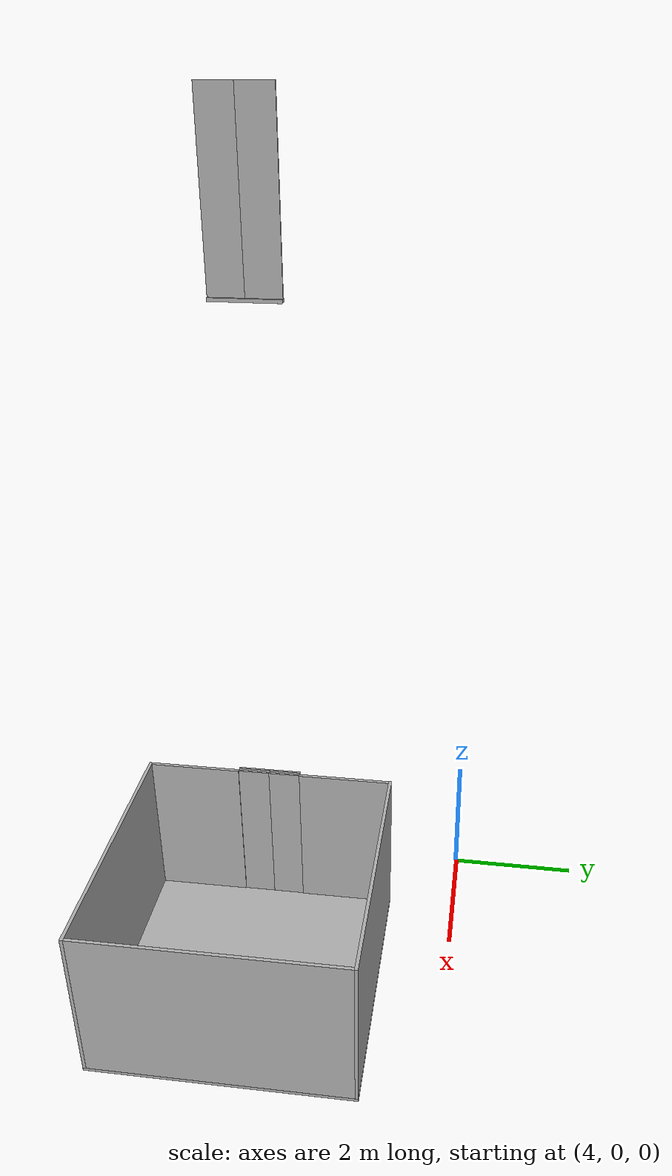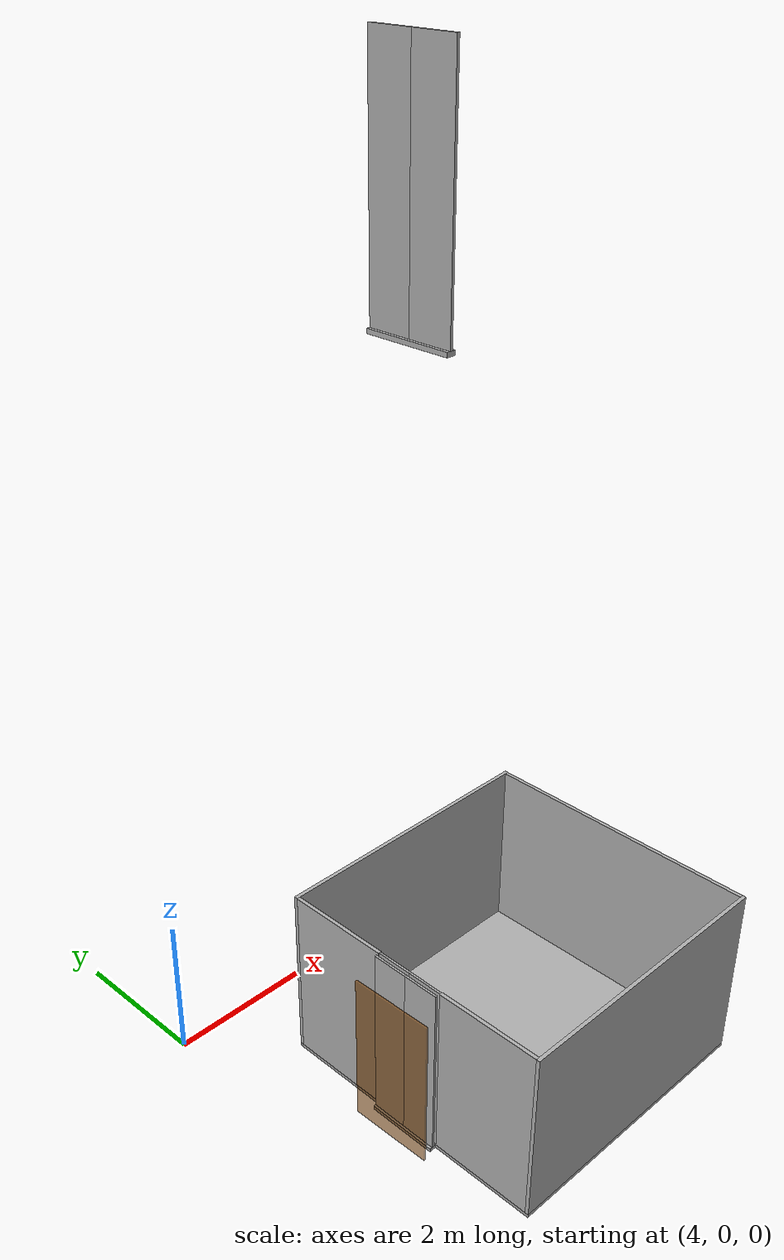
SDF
<sdf version="1.7">
 <world name="sim_world">
  <physics name="10ms" type="ode">
   <max_step_size>0.01</max_step_size>
   <real_time_factor>1.0</real_time_factor>
  </physics>
  <plugin filename="gz-sim-physics-system" name="gz::sim::systems::Physics"/>
  <plugin filename="gz-sim-user-commands-system" name="gz::sim::systems::UserCommands"/>
  <plugin filename="gz-sim-scene-broadcaster-system" name="gz::sim::systems::SceneBroadcaster"/>
  <plugin filename="libdoor.so" name="door"/>
  <plugin filename="liblift.so" name="lift"/>
  <scene><ambient>1 1 1</ambient><background>0.8 0.8 0.8</background><grid>false</grid></scene>
  <light type="directional" name="sun">
   <pose>0 0 10 0 0 0</pose>
   <diffuse>1 1 1 1</diffuse>
   <specular>0.2 0.2 0.2 1</specular>
   <attenuation>
    <range>1000</range>
    <constant>0.09</constant>
    <linear>0.001</linear>
    <quadratic>0.001</quadratic>
   </attenuation>
   <direction>-0.5 0.1 -0.9</direction>
  </light>
  <model name="null">
   <pose>4.847733333333333 -3.0652 0.0 0 0 1.5896922564070775</pose>
   <link name="right">
    <pose>0 0 1.11 0 0 0</pose>
    <visual name="right_visual">
     <geometry><box><size>1.154341194743954 0.03 2.2</size></box></geometry>
     <material>
      <ambient>0.5 0.25 0 0.6</ambient>
      <diffuse>0.5 0.25 0 0.6</diffuse>
      <pbr><metal><metalness>0.0</metalness></metal></pbr>
     </material>
    </visual>
    <collision name="right_collision">
     <geometry><box><size>1.154341194743954 0.03 2.2</size></box></geometry>
     <surface><contact><collide_bitmask>0x02</collide_bitmask></contact></surface>
    </collision>
    <inertial>
     <mass>50.0</mass>
     <inertia><ixx>20.17041666666667</ixx><iyy>25.71876497451208</iyy><izz>5.5558483078454115</izz></inertia>
    </inertial>
   </link>
   <joint name="right_joint" type="revolute">
    <parent>world</parent>
    <child>right</child>
    <axis><xyz>0 0 -1</xyz><limit><lower>0</lower><upper>1.57</upper></limit></axis>
    <pose>0.582170597371977 0 0 0 0 0</pose>
   </joint>
   <plugin name="register_component" filename="libregister_component.so">
    <component name="Door">
     <v_max_door>0.5</v_max_door>
     <a_max_door>0.3</a_max_door>
     <a_nom_door>0.15</a_nom_door>
     <dx_min_door>0.01</dx_min_door>
     <f_max_door>500.0</f_max_door>
     <ros_interface>true</ros_interface>
     <door name="null" type="SwingDoor" left_joint_name="empty_joint" right_joint_name="right_joint"/>
    </component>
   </plugin>
  </model>
  <model name="ShaftDoor_lift1_L1_name">
   <pose>5.083333333333333 -3.0666666666666664 0.0 0 0 1.57</pose>
   <link name="right_door">
    <pose>0.25 0 1.25 0 0 0</pose>
    <visual name="right_door_visual">
     <geometry><box><size>0.5 0.03 2.5</size></box></geometry>
     <material>
      <ambient>0.5 0.5 0.5 1</ambient>
      <diffuse>0.7 0.7 0.7 1</diffuse>
      <specular>0.6 0.6 0.6 1</specular>
      <emissive>0.1 0.1 0.1 1</emissive>
     </material>
    </visual>
    <collision name="right_door_collision">
     <geometry><box><size>0.5 0.03 2.5</size></box></geometry>
     <surface><contact><collide_bitmask>0x02</collide_bitmask></contact></surface>
    </collision>
   </link>
   <link name="left_door">
    <pose>-0.25 0 1.25 0 0 0</pose>
    <visual name="left_door_visual">
     <geometry><box><size>0.5 0.03 2.5</size></box></geometry>
     <material>
      <ambient>0.5 0.5 0.5 1</ambient>
      <diffuse>0.7 0.7 0.7 1</diffuse>
      <specular>0.6 0.6 0.6 1</specular>
      <emissive>0.1 0.1 0.1 1</emissive>
     </material>
    </visual>
    <collision name="left_door_collision">
     <geometry><box><size>0.5 0.03 2.5</size></box></geometry>
     <surface><contact><collide_bitmask>0x02</collide_bitmask></contact></surface>
    </collision>
   </link>
   <joint name="right_joint" type="prismatic">
    <parent>world</parent>
    <child>right_door</child>
    <axis><xyz>1 0 0</xyz><limit><lower>0</lower><upper>0.5</upper></limit></axis>
   </joint>
   <joint name="left_joint" type="prismatic">
    <parent>world</parent>
    <child>left_door</child>
    <axis><xyz>1 0 0</xyz><limit><lower>-0.5</lower><upper>0</upper></limit></axis>
   </joint>
   <link name="ramp">
    <pose>0 0 -0.025 0 0 0</pose>
    <visual name="ramp_visual">
     <geometry><box><size>1.0 0.1 0.05</size></box></geometry>
     <material>
      <ambient>0.5 0.5 0.5 1</ambient>
      <diffuse>0.7 0.7 0.7 1</diffuse>
      <specular>0.6 0.6 0.6 1</specular>
      <emissive>0.1 0.1 0.1 1</emissive>
     </material>
    </visual>
    <collision name="ramp_collision">
     <geometry><box><size>1.0 0.1 0.05</size></box></geometry>
     <surface><contact><collide_bitmask>0x02</collide_bitmask></contact></surface>
    </collision>
   </link>
   <joint name="ramp_joint" type="fixed"><parent>world</parent><child>ramp</child></joint>
   <plugin name="register_component" filename="libregister_component.so">
    <component name="Door">
     <v_max_door>0.3</v_max_door>
     <a_max_door>0.2</a_max_door>
     <a_nom_door>0.1</a_nom_door>
     <dx_min_door>0.0001</dx_min_door>
     <f_max_door>35.0</f_max_door>
     <door left_joint_name="left_joint" name="ShaftDoor_lift1_L1_name" right_joint_name="right_joint" type="DoubleSlidingDoor"/>
    </component>
   </plugin>
  </model>
  <model name="ShaftDoor_lift1_L2_name">
   <pose>5.083333333333333 -3.0666666666666664 10.0 0 0 1.57</pose>
   <link name="right_door">
    <pose>0.25 0 1.25 0 0 0</pose>
    <visual name="right_door_visual">
     <geometry><box><size>0.5 0.03 2.5</size></box></geometry>
     <material>
      <ambient>0.5 0.5 0.5 1</ambient>
      <diffuse>0.7 0.7 0.7 1</diffuse>
      <specular>0.6 0.6 0.6 1</specular>
      <emissive>0.1 0.1 0.1 1</emissive>
     </material>
    </visual>
    <collision name="right_door_collision">
     <geometry><box><size>0.5 0.03 2.5</size></box></geometry>
     <surface><contact><collide_bitmask>0x02</collide_bitmask></contact></surface>
    </collision>
   </link>
   <link name="left_door">
    <pose>-0.25 0 1.25 0 0 0</pose>
    <visual name="left_door_visual">
     <geometry><box><size>0.5 0.03 2.5</size></box></geometry>
     <material>
      <ambient>0.5 0.5 0.5 1</ambient>
      <diffuse>0.7 0.7 0.7 1</diffuse>
      <specular>0.6 0.6 0.6 1</specular>
      <emissive>0.1 0.1 0.1 1</emissive>
     </material>
    </visual>
    <collision name="left_door_collision">
     <geometry><box><size>0.5 0.03 2.5</size></box></geometry>
     <surface><contact><collide_bitmask>0x02</collide_bitmask></contact></surface>
    </collision>
   </link>
   <joint name="right_joint" type="prismatic">
    <parent>world</parent>
    <child>right_door</child>
    <axis><xyz>1 0 0</xyz><limit><lower>0</lower><upper>0.5</upper></limit></axis>
   </joint>
   <joint name="left_joint" type="prismatic">
    <parent>world</parent>
    <child>left_door</child>
    <axis><xyz>1 0 0</xyz><limit><lower>-0.5</lower><upper>0</upper></limit></axis>
   </joint>
   <link name="ramp">
    <pose>0 0 -0.025 0 0 0</pose>
    <visual name="ramp_visual">
     <geometry><box><size>1.0 0.1 0.05</size></box></geometry>
     <material>
      <ambient>0.5 0.5 0.5 1</ambient>
      <diffuse>0.7 0.7 0.7 1</diffuse>
      <specular>0.6 0.6 0.6 1</specular>
      <emissive>0.1 0.1 0.1 1</emissive>
     </material>
    </visual>
    <collision name="ramp_collision">
     <geometry><box><size>1.0 0.1 0.05</size></box></geometry>
     <surface><contact><collide_bitmask>0x02</collide_bitmask></contact></surface>
    </collision>
   </link>
   <joint name="ramp_joint" type="fixed"><parent>world</parent><child>ramp</child></joint>
   <plugin name="register_component" filename="libregister_component.so">
    <component name="Door">
     <v_max_door>0.3</v_max_door>
     <a_max_door>0.2</a_max_door>
     <a_nom_door>0.1</a_nom_door>
     <dx_min_door>0.0001</dx_min_door>
     <f_max_door>35.0</f_max_door>
     <door left_joint_name="left_joint" name="ShaftDoor_lift1_L2_name" right_joint_name="right_joint" type="DoubleSlidingDoor"/>
    </component>
   </plugin>
  </model>
  <model name="lift1">
   <link name="platform">
    <inertial>
     <mass>1200</mass>
     <inertia><ixx>1600.2500000000002</ixx><iyy>1600.2500000000002</iyy><izz>3200.0</izz></inertia>
    </inertial>
    <visual name="floor_visual">
     <pose>0 0 -0.025 0 0 0</pose>
     <geometry><box><size>4.0 4.0 0.05</size></box></geometry>
     <material>
      <ambient>0.5 0.5 0.5 1</ambient>
      <diffuse>0.7 0.7 0.7 1</diffuse>
      <specular>0.6 0.6 0.6 1</specular>
      <emissive>0.1 0.1 0.1 1</emissive>
     </material>
    </visual>
    <collision name="floor_collision">
     <pose>0 0 -0.025 0 0 0</pose>
     <geometry><box><size>4.0 4.0 0.05</size></box></geometry>
     <surface><contact><collide_bitmask>0x01</collide_bitmask></contact></surface>
    </collision>
    <visual name="frontwall1_visual">
     <pose>0.0 1.975 1.25 0 0 0</pose>
     <geometry><box><size>4.0 0.05 2.5</size></box></geometry>
     <material>
      <ambient>0.5 0.5 0.5 1</ambient>
      <diffuse>0.7 0.7 0.7 1</diffuse>
      <specular>0.6 0.6 0.6 1</specular>
      <emissive>0.1 0.1 0.1 1</emissive>
     </material>
    </visual>
    <collision name="frontwall1_collision">
     <pose>0.0 1.975 1.25 0 0 0</pose>
     <geometry><box><size>4.0 0.05 2.5</size></box></geometry>
     <surface><contact><collide_bitmask>0x01</collide_bitmask></contact></surface>
    </collision>
    <visual name="backwall1_visual">
     <pose>0.0 -1.975 1.25 0 0 0</pose>
     <geometry><box><size>4.0 0.05 2.5</size></box></geometry>
     <material>
      <ambient>0.5 0.5 0.5 1</ambient>
      <diffuse>0.7 0.7 0.7 1</diffuse>
      <specular>0.6 0.6 0.6 1</specular>
      <emissive>0.1 0.1 0.1 1</emissive>
     </material>
    </visual>
    <collision name="backwall1_collision">
     <pose>0.0 -1.975 1.25 0 0 0</pose>
     <geometry><box><size>4.0 0.05 2.5</size></box></geometry>
     <surface><contact><collide_bitmask>0x01</collide_bitmask></contact></surface>
    </collision>
    <visual name="leftwall1_visual">
     <pose>-1.975 -1.225 1.25 0 0 1.5707963267948966</pose>
     <geometry><box><size>1.45 0.05 2.5</size></box></geometry>
     <material>
      <ambient>0.5 0.5 0.5 1</ambient>
      <diffuse>0.7 0.7 0.7 1</diffuse>
      <specular>0.6 0.6 0.6 1</specular>
      <emissive>0.1 0.1 0.1 1</emissive>
     </material>
    </visual>
    <collision name="leftwall1_collision">
     <pose>-1.975 -1.225 1.25 0 0 1.5707963267948966</pose>
     <geometry><box><size>1.45 0.05 2.5</size></box></geometry>
     <surface><contact><collide_bitmask>0x01</collide_bitmask></contact></surface>
    </collision>
    <visual name="leftwall2_visual">
     <pose>-1.975 1.225 1.25 0 0 1.5707963267948966</pose>
     <geometry><box><size>1.45 0.05 2.5</size></box></geometry>
     <material>
      <ambient>0.5 0.5 0.5 1</ambient>
      <diffuse>0.7 0.7 0.7 1</diffuse>
      <specular>0.6 0.6 0.6 1</specular>
      <emissive>0.1 0.1 0.1 1</emissive>
     </material>
    </visual>
    <collision name="leftwall2_collision">
     <pose>-1.975 1.225 1.25 0 0 1.5707963267948966</pose>
     <geometry><box><size>1.45 0.05 2.5</size></box></geometry>
     <surface><contact><collide_bitmask>0x01</collide_bitmask></contact></surface>
    </collision>
    <visual name="rightwall1_visual">
     <pose>1.975 0.0 1.25 0 0 1.5707963267948966</pose>
     <geometry><box><size>3.9 0.05 2.5</size></box></geometry>
     <material>
      <ambient>0.5 0.5 0.5 1</ambient>
      <diffuse>0.7 0.7 0.7 1</diffuse>
      <specular>0.6 0.6 0.6 1</specular>
      <emissive>0.1 0.1 0.1 1</emissive>
     </material>
    </visual>
    <collision name="rightwall1_collision">
     <pose>1.975 0.0 1.25 0 0 1.5707963267948966</pose>
     <geometry><box><size>3.9 0.05 2.5</size></box></geometry>
     <surface><contact><collide_bitmask>0x01</collide_bitmask></contact></surface>
    </collision>
   </link>
   <joint name="cabin_joint" type="prismatic">
    <parent>world</parent>
    <child>platform</child>
    <axis><xyz>0 0 1</xyz></axis>
   </joint>
   <model name="CabinDoor_lift1_name">
    <pose>-1.975 0.0 0 0 0 1.57</pose>
    <link name="right_door">
     <pose>0.25 0 1.25 0 0 0</pose>
     <visual name="right_door_visual">
      <geometry><box><size>0.5 0.03 2.5</size></box></geometry>
      <material>
       <ambient>0.5 0.5 0.5 1</ambient>
       <diffuse>0.7 0.7 0.7 1</diffuse>
       <specular>0.6 0.6 0.6 1</specular>
       <emissive>0.1 0.1 0.1 1</emissive>
      </material>
     </visual>
     <collision name="right_door_collision">
      <geometry><box><size>0.5 0.03 2.5</size></box></geometry>
      <surface><contact><collide_bitmask>0x02</collide_bitmask></contact></surface>
     </collision>
    </link>
    <link name="left_door">
     <pose>-0.25 0 1.25 0 0 0</pose>
     <visual name="left_door_visual">
      <geometry><box><size>0.5 0.03 2.5</size></box></geometry>
      <material>
       <ambient>0.5 0.5 0.5 1</ambient>
       <diffuse>0.7 0.7 0.7 1</diffuse>
       <specular>0.6 0.6 0.6 1</specular>
       <emissive>0.1 0.1 0.1 1</emissive>
      </material>
     </visual>
     <collision name="left_door_collision">
      <geometry><box><size>0.5 0.03 2.5</size></box></geometry>
      <surface><contact><collide_bitmask>0x02</collide_bitmask></contact></surface>
     </collision>
    </link>
    <plugin name="register_component" filename="libregister_component.so">
     <component name="Door">
      <v_max_door>0.3</v_max_door>
      <a_max_door>0.2</a_max_door>
      <a_nom_door>0.1</a_nom_door>
      <dx_min_door>0.0001</dx_min_door>
      <f_max_door>35.0</f_max_door>
      <door left_joint_name="CabinDoor_lift1_name_left_joint" name="CabinDoor_lift1_name" right_joint_name="CabinDoor_lift1_name_right_joint" type="DoubleSlidingDoor"/>
     </component>
    </plugin>
   </model>
   <joint name="CabinDoor_lift1_name_right_joint" type="prismatic">
    <parent>platform</parent>
    <child>CabinDoor_lift1_name::right_door</child>
    <axis><xyz>1 0 0</xyz><limit><lower>0</lower><upper>0.5</upper></limit></axis>
   </joint>
   <joint name="CabinDoor_lift1_name_left_joint" type="prismatic">
    <parent>platform</parent>
    <child>CabinDoor_lift1_name::left_door</child>
    <axis><xyz>1 0 0</xyz><limit><lower>-0.5</lower><upper>0</upper></limit></axis>
   </joint>
   <plugin name="register_component" filename="libregister_component.so">
    <component name="Lift">
     <lift_name>lift1</lift_name>
     <floor name="L1" elevation="0.0">
      <door_pair cabin_door="CabinDoor_lift1_name" shaft_door="ShaftDoor_lift1_L1_name"/>
     </floor>
     <floor name="L2" elevation="10.0">
      <door_pair cabin_door="CabinDoor_lift1_name" shaft_door="ShaftDoor_lift1_L2_name"/>
     </floor>
     <initial_floor>L1</initial_floor>
     <v_max_cabin>2.0</v_max_cabin>
     <a_max_cabin>1.2</a_max_cabin>
     <a_nom_cabin>1.0</a_nom_cabin>
     <dx_min_cabin>0.001</dx_min_cabin>
     <f_max_cabin>25323.0</f_max_cabin>
     <cabin_joint_name>cabin_joint</cabin_joint_name>
    </component>
   </plugin>
   <pose>7.133333333333333 -3.0666666666666664 0 0 0 0.0</pose>
  </model>
  <plugin name="register_component" filename="libregister_component.so">
   <component name="Chargers">
    <rmf_charger name="tinyRobot1_charger" x="3.3333333333333335" y="-3.3333333333333335" z="0.0"/>
    <rmf_charger name="piso2" x="1.2668912353036161" y="-3.1138961073488036" z="10.0"/>
   </component>
  </plugin>
 </world>
</sdf>
